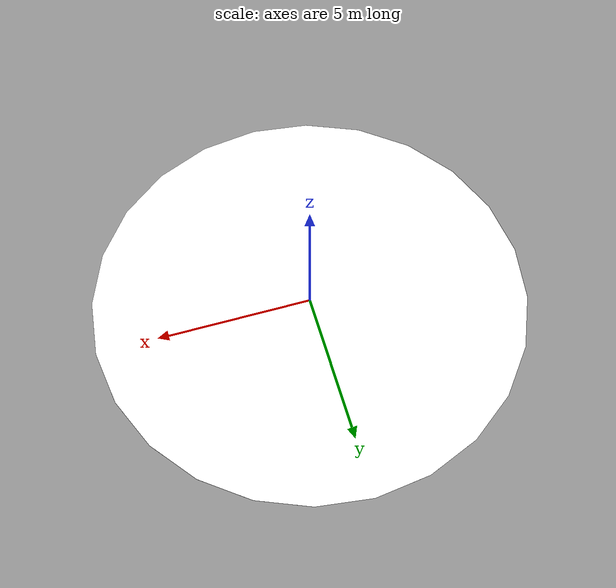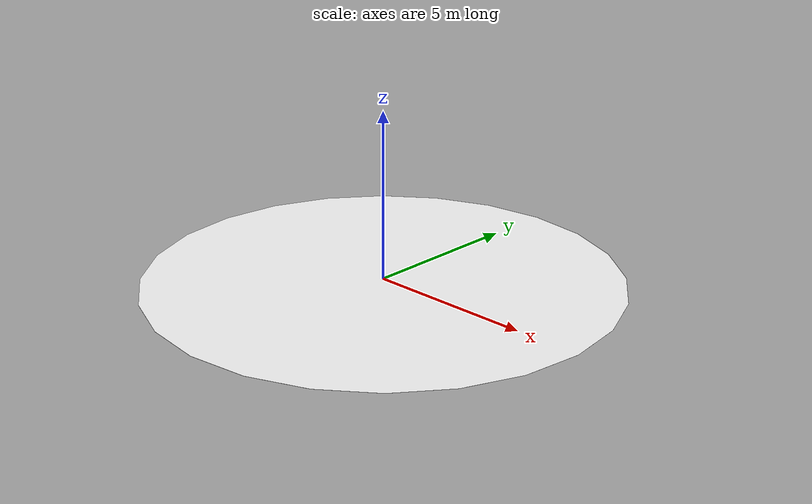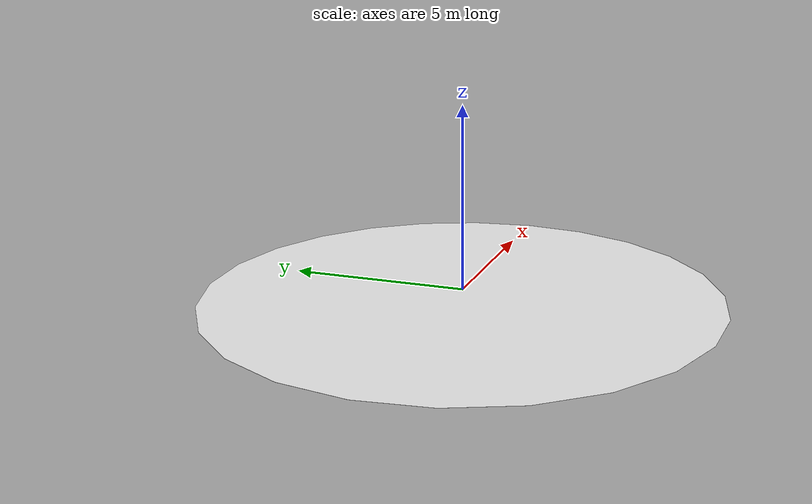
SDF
<?xml version='1.0' encoding='utf-8'?>
<sdf version='1.10'>
<model name='arena'>
  <link name='arena_link'>
    <enable_wind>false</enable_wind>
    <collision name='arena_collision'>
      <geometry><cylinder>
        <radius>7</radius>
        <length>0.001</length>
      </cylinder></geometry>
      <surface>
        <friction><ode/></friction>
        <bounce/>
        <contact/>
      </surface>
    </collision>
    <visual name='arena_visual'>
      <geometry><cylinder>
        <radius>7</radius>
        <length>0.001</length>
      </cylinder></geometry>
      <material>
        <ambient>0.4 0.4 0.4 1</ambient>
        <diffuse>1 1 1 1</diffuse>
        <specular>1 1 1 1</specular>
      </material>
    </visual>
  </link>
  <self_collide>false</self_collide>
</model>
</sdf>
